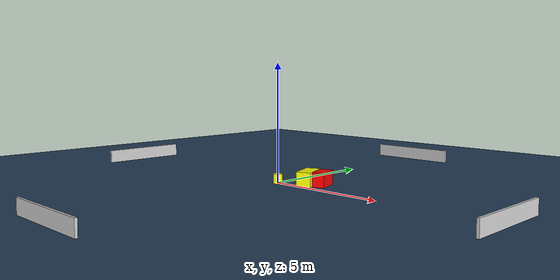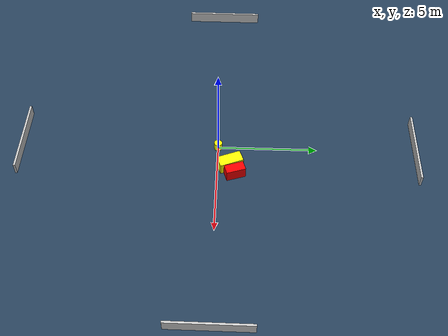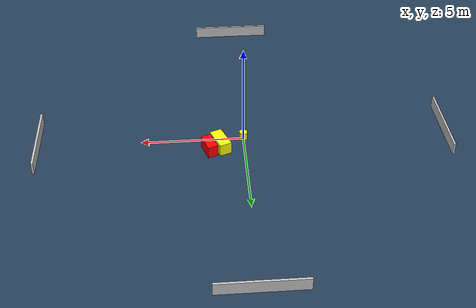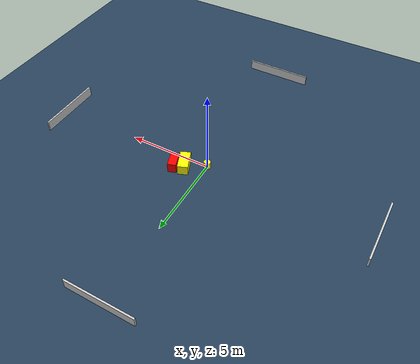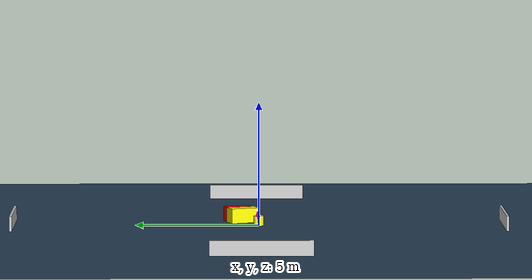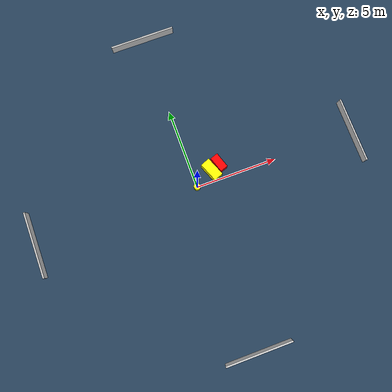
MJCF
<?xml version="1.0" ?>
<mujoco model="generated_environment">
  <option timestep="0.01" integrator="RK4" cone="elliptic"/>
  <default>
    <geom density="1"/>
  </default>
  <asset>
    <texture builtin="gradient" height="3072" name="skybox" rgb1="0.3 0.5 0.7" rgb2="0 0 0" type="skybox" width="512"/>
    <texture builtin="checker" height="300" name="groundplane" rgb1="0.2 0.3 0.4" rgb2="0.1 0.2 0.3" type="2d" width="300"/>
    <material name="groundplane" reflectance="0.2" texrepeat="5 5" texture="groundplane"/>
  </asset>
  <worldbody>
    <light dir="0 0 -1" directional="true" pos="0 0 1.5"/>
    <geom condim="3" friction="0.5 0.005 0.001" material="groundplane" name="floor" pos="0 0 0" size="0 0 0.05" type="plane"/>
    <body name="walls">
      <geom name="wall_1" condim="4" pos="-10.0 0.0 0.3" rgba="0.800000011920929 0.800000011920929 0.800000011920929 1.0" size="0.05 2.0 0.3" type="box"/>
      <geom name="wall_2" condim="4" pos="10.0 0.0 0.3" rgba="0.800000011920929 0.800000011920929 0.800000011920929 1.0" size="0.05 2.0 0.3" type="box"/>
      <geom name="wall_3" condim="4" pos="0.0 -10.0 0.3" rgba="0.800000011920929 0.800000011920929 0.800000011920929 1.0" size="2.0 0.05 0.3" type="box"/>
      <geom name="wall_4" condim="4" pos="0.0 10.0 0.3" rgba="0.800000011920929 0.800000011920929 0.800000011920929 1.0" size="2.0 0.05 0.3" type="box"/>
    </body>
    <body name="robot">
      <joint name="joint_x" type="slide" pos="0 0 0" axis="1 0 0"/>
      <joint name="joint_y" type="slide" pos="0 0 0" axis="0 1 0"/>
      <geom name="robot" type="cylinder" pos="0.0 0.0 0.2" size="0.2 0.2 0.0" mass="5.0" friction="1.0 0.005 0.0001" condim="4" rgba="1.0 1.0 0.0 1.0"/>
    </body>
    <body name="obstacle_1_movable">
      <geom name="obstacle_1_movable" condim="4" pos="1.153245587232618 0.6311127658779075 0.3" euler="0 0 111.78148119634706" friction="0.0 0.005 0.001" rgba="1.0 1.0 0.0 1.0" size="0.6109867687421198 0.30374777995378827 0.3" type="box" mass="0.1"/>
      <joint type="free"/>
    </body>
    <body name="obstacle_2_static">
      <geom name="obstacle_2_static" condim="4" pos="1.7025951689165362 0.8848027523947823 0.3" euler="0 0 288.444661087462" friction="0.0 0.005 0.001" rgba="1.0 0.0 0.0 1.0" size="0.4885020143176587 0.2492014205512469 0.3" type="box"/>
    </body>
  </worldbody>
  <actuator>
    <motor name="actuator_x" joint="joint_x" gear="1" ctrlrange="-1 1"/>
    <motor name="actuator_y" joint="joint_y" gear="1" ctrlrange="-1 1"/>
  </actuator>
</mujoco>
